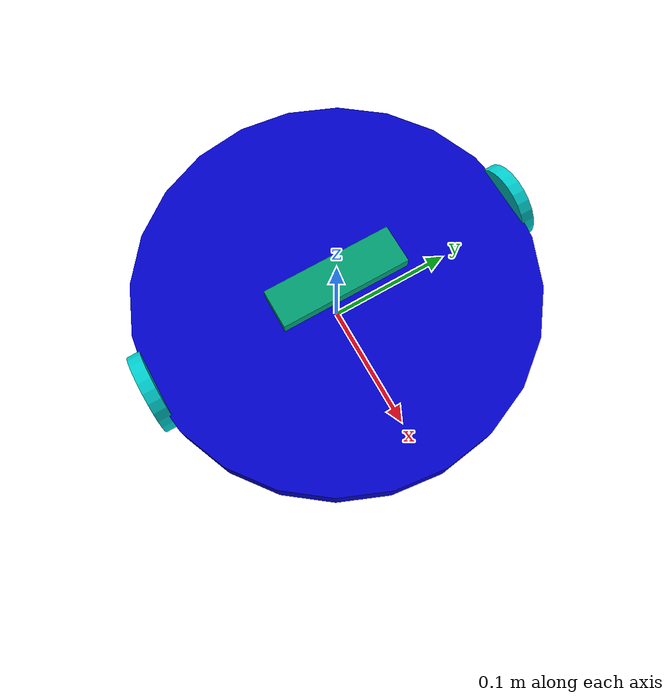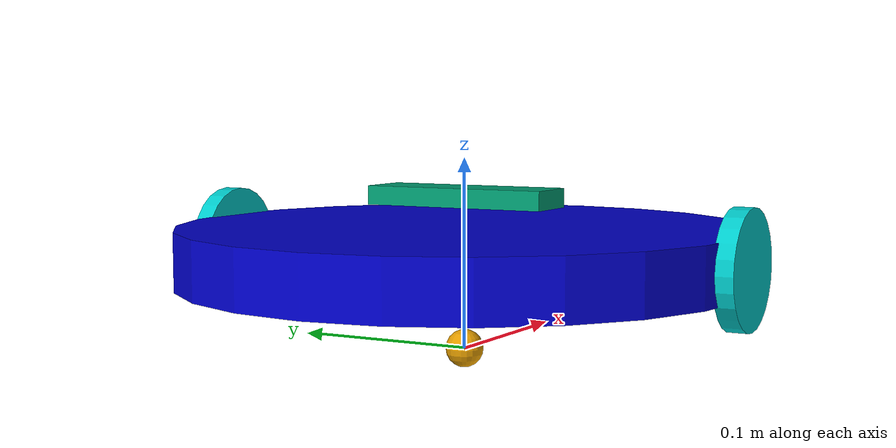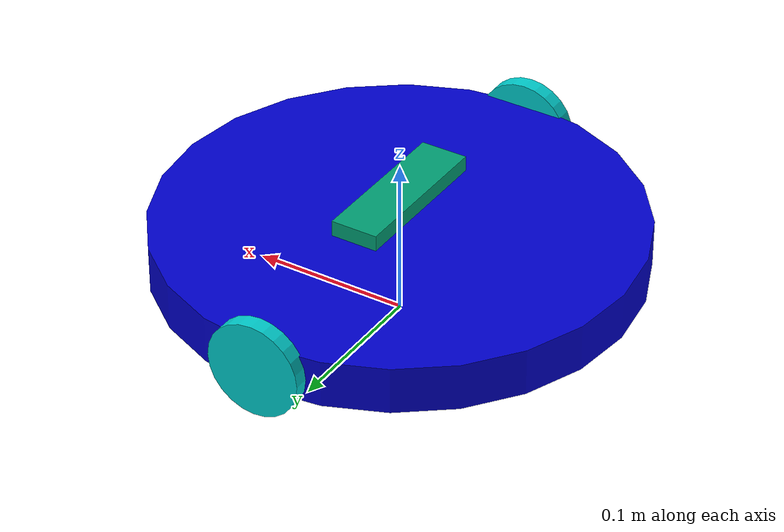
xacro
<?xml version="1.0"?>
<robot name="diffbot"
  xmlns:xacro="http://www.ros.org/wiki/xacro">

  <xacro:property name="laser_height" value=".03" />
  <xacro:property name="wheel_radius" value=".03" />
  <xacro:property name="wheel_width" value=".01" />
  <xacro:property name="wheel_offset" value=".15" />

  <material name="blue">
    <color rgba="0 0 0.8 1.0"/>
  </material>

  <material name="green">
    <color rgba="0 0.8 0.8 1.0"/>
  </material>

  <!-- Base footprint -->
  <link name="base_footprint">
    <visual>
      <geometry>
        <sphere radius="0.01"/>
      </geometry>
    </visual>
  </link>

  <link name="base_link">
    <visual>
      <geometry>
        <cylinder radius="0.15" length="0.03"/>
      </geometry>
      <material name="blue"/>
    </visual>
  </link>

  <joint name="base_footprint_to_base_link" type="fixed">
    <parent link="base_footprint"/>
    <child link="base_link"/>
    <origin xyz="0 0 0.05" rpy="0 0 0"/>
  </joint>

  <link name="lidar">
    <origin xyz="0 0 0.045" rpy="0.0 0 0"/>
    <visual>
      <geometry>
        <box size="0.1 0.03 0.01" />
      </geometry>
    </visual>
  </link>

  <joint name="lidar_joint" type="fixed">
    <parent link="base_link"/>
    <child link="lidar"/>
    <origin xyz="0 0 ${laser_height}" rpy="0.0 0 ${pi/2}"/>
  </joint>

  <xacro:macro name="wheel" params="prefix reflect">
    <link name="${prefix}_wheel">
      <visual>
        <origin xyz="0 0 0" rpy="${pi/2} 0 0"/>
        <geometry>
          <cylinder radius="${wheel_radius}" length="${wheel_width}"/>
        </geometry>
        <material name="green" />
      </visual>
    </link>
    <joint name="${prefix}_wheel_joint" type="continuous">
      <parent link="base_link"/>
      <child link="${prefix}_wheel"/>
      <origin xyz="0 ${reflect*wheel_offset} 0"/>
    </joint>
  </xacro:macro>

  <xacro:wheel prefix="left" reflect="1"/>
  <xacro:wheel prefix="right" reflect="-1"/>

</robot>
